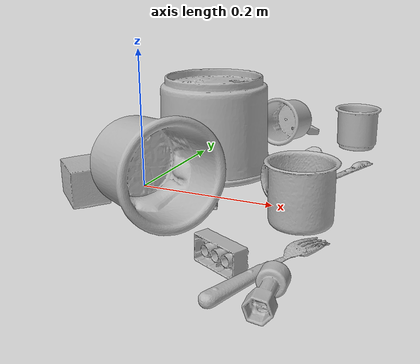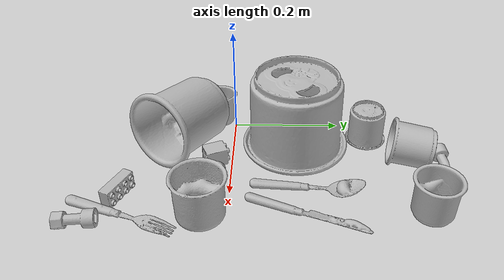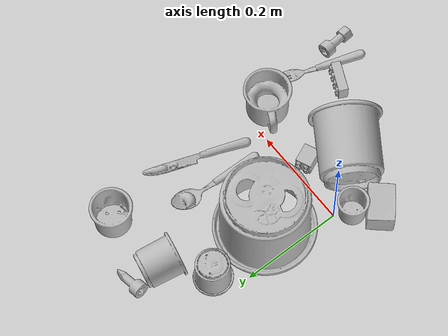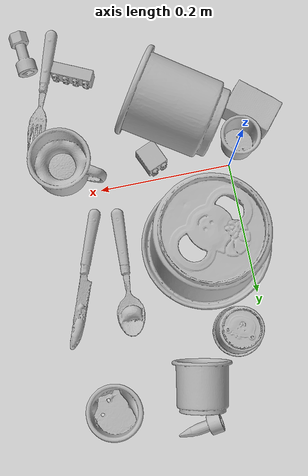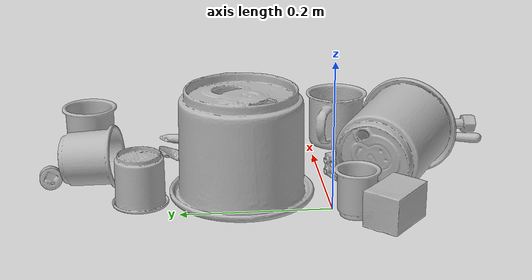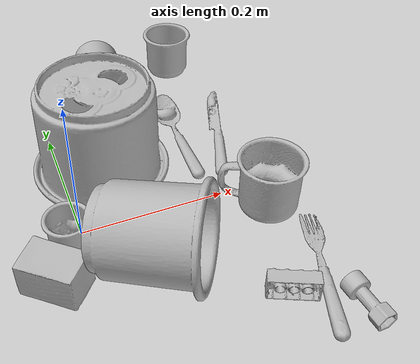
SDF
<sdf version="1.4">
  <world name="default">
    <light name="light1" type="point">
      <pose>0 0 1 0 0 0</pose>
      <diffuse>3 3 3 1</diffuse>
      <specular>3 3 3 1</specular>
    </light>
    <light name="light2" type="point">
      <pose>0 0.5 2 0 0 0</pose>
      <diffuse>1 1 1 1</diffuse>
      <specular>1 1 1 1</specular>
    </light>
    <light name="light3" type="point">
      <pose>0 0.5 2 0 0 0</pose>
      <diffuse>3 3 3 1</diffuse>
      <specular>3 3 3 1</specular>
    </light>
    <scene>
      <ambient>0.7 0.7 0.7</ambient>
    </scene>
    <model name="cup1">
      <link name="link_cup1">
        <collision name="default">
          <geometry>
            <mesh>
              <uri>model://e_cups/collision_meshes/collision.obj</uri>
              <scale>1.0 1.0 1.0</scale>
            </mesh>
          </geometry>
          <surface>
            <friction>
              <ode>
                <mu>0.5</mu>
                <mu2>0.5</mu2>
              </ode>
            </friction>
          <contact>
        <ode>
            <max_vel>0</max_vel>
            <min_depth>0.0001</min_depth>
            <kp>1e8</kp>
        </ode>
    </contact></surface>
        </collision>
        <visual name="default">
          <geometry>
            <mesh>
              <uri>model://e_cups/visual_meshes/visual.dae</uri>
              <scale>1.0 1.0 1.0</scale>
            </mesh>
          </geometry>
        </visual>
        <inertial>
          <mass>0.07679437845945358</mass>
          <pose>0.001135574304498732 0.002879783743992448 -0.0038829718250781298 0.6952411595659588 0.08767733322521654 -0.5235244631248706</pose>
          <inertia>
            <ixx>6.771342e-05</ixx>
            <iyy>7.077022e-05</iyy>
            <izz>6.4741864e-05</izz>
            <ixy>0</ixy>
            <ixz>0</ixz>
            <iyz>0</iyz>
          </inertia>
        </inertial>
      </link>
      <pose>0.04227800294756889 0.2513335943222046 0.03560691326856613 3.139696805803315 0.00825198334174455 -0.8551345230291284</pose>
    </model>
    <model name="silverware1">
      <link name="link_silverware1">
        <collision name="default">
          <geometry>
            <mesh>
              <uri>model://spoon/collision_meshes/collision.obj</uri>
              <scale>1.0 1.0 1.0</scale>
            </mesh>
          </geometry>
          <surface>
            <friction>
              <ode>
                <mu>0.5</mu>
                <mu2>0.5</mu2>
              </ode>
            </friction>
          <contact>
        <ode>
            <max_vel>0</max_vel>
            <min_depth>0.0001</min_depth>
            <kp>1e8</kp>
        </ode>
    </contact></surface>
        </collision>
        <visual name="default">
          <geometry>
            <mesh>
              <uri>model://spoon/visual_meshes/visual.dae</uri>
              <scale>1.0 1.0 1.0</scale>
            </mesh>
          </geometry>
        </visual>
        <inertial>
          <mass>0.015083584003150463</mass>
          <pose>-0.005526313092559576 -0.001603418029844761 -0.000727165665011853 0.035216710638299134 -0.03906584880684835 0.006150613179751253</pose>
          <inertia>
            <ixx>8.389734e-07</ixx>
            <iyy>5.739254e-05</iyy>
            <izz>5.7806283e-05</izz>
            <ixy>0</ixy>
            <ixz>0</ixz>
            <iyz>0</iyz>
          </inertia>
        </inertial>
      </link>
      <pose>0.1874355524778366 0.13244876265525818 0.008385262452065945 0.00672962799486395 0.026892989688329098 1.5080020785227575</pose>
    </model>
    <model name="cup2">
      <link name="link_cup2">
        <collision name="default">
          <geometry>
            <mesh>
              <uri>model://g_cups/collision_meshes/collision.obj</uri>
              <scale>1.0 1.0 1.0</scale>
            </mesh>
          </geometry>
          <surface>
            <friction>
              <ode>
                <mu>0.5</mu>
                <mu2>0.5</mu2>
              </ode>
            </friction>
          <contact>
        <ode>
            <max_vel>0</max_vel>
            <min_depth>0.0001</min_depth>
            <kp>1e8</kp>
        </ode>
    </contact></surface>
        </collision>
        <visual name="default">
          <geometry>
            <mesh>
              <uri>model://g_cups/visual_meshes/visual.dae</uri>
              <scale>1.0 1.0 1.0</scale>
            </mesh>
          </geometry>
        </visual>
        <inertial>
          <mass>0.04187431186437607</mass>
          <pose>-0.0007946277037262917 -4.2064348235726357e-05 -0.0021329382434487343 -0.21382305588888167 -0.31410659578681893 0.31120215507532384</pose>
          <inertia>
            <ixx>4.8876722e-05</ixx>
            <iyy>4.871046e-05</iyy>
            <izz>5.0627856e-05</izz>
            <ixy>0</ixy>
            <ixz>0</ixz>
            <iyz>0</iyz>
          </inertia>
        </inertial>
      </link>
      <pose>0.11376741528511047 0.31946271657943726 0.03995725139975548 1.4103382275447611 0.85613988061182 -0.31620398998892957</pose>
    </model>
    <model name="silverware2">
      <link name="link_silverware2">
        <collision name="default">
          <geometry>
            <mesh>
              <uri>model://fork/collision_meshes/collision.obj</uri>
              <scale>1.0 1.0 1.0</scale>
            </mesh>
          </geometry>
          <surface>
            <friction>
              <ode>
                <mu>0.5</mu>
                <mu2>0.5</mu2>
              </ode>
            </friction>
          <contact>
        <ode>
            <max_vel>0</max_vel>
            <min_depth>0.0001</min_depth>
            <kp>1e8</kp>
        </ode>
    </contact></surface>
        </collision>
        <visual name="default">
          <geometry>
            <mesh>
              <uri>model://fork/visual_meshes/visual.dae</uri>
              <scale>1.0 1.0 1.0</scale>
            </mesh>
          </geometry>
        </visual>
        <inertial>
          <mass>0.025364622473716736</mass>
          <pose>-0.029570050537586212 0.00046588227269239724 0.00032188615296036005 -0.013551666838441594 -0.010977837199147297 0.014453899745261501</pose>
          <inertia>
            <ixx>8.8917335e-07</ixx>
            <iyy>6.621973e-05</iyy>
            <izz>6.661743e-05</izz>
            <ixy>0</ixy>
            <ixz>0</ixz>
            <iyz>0</iyz>
          </inertia>
        </inertial>
      </link>
      <pose>0.25825434923171997 -0.17289170622825623 0.007446602918207645 -3.063499452701453 0.0028359583619422977 1.2395185513414435</pose>
    </model>
    <model name="cup3">
      <link name="link_cup3">
        <collision name="default">
          <geometry>
            <mesh>
              <uri>model://f_cups/collision_meshes/collision.obj</uri>
              <scale>1.0 1.0 1.0</scale>
            </mesh>
          </geometry>
          <surface>
            <friction>
              <ode>
                <mu>0.5</mu>
                <mu2>0.5</mu2>
              </ode>
            </friction>
          <contact>
        <ode>
            <max_vel>0</max_vel>
            <min_depth>0.0001</min_depth>
            <kp>1e8</kp>
        </ode>
    </contact></surface>
        </collision>
        <visual name="default">
          <geometry>
            <mesh>
              <uri>model://f_cups/visual_meshes/visual.dae</uri>
              <scale>1.0 1.0 1.0</scale>
            </mesh>
          </geometry>
        </visual>
        <inertial>
          <mass>0.08338716626167297</mass>
          <pose>-0.0031714679207652807 -0.0006240069633349776 -0.003655536798760295 0.7862348245142414 -0.2607950949044878 -0.18237232658982702</pose>
          <inertia>
            <ixx>7.838616e-05</ixx>
            <iyy>8.222797e-05</iyy>
            <izz>8.560161e-05</izz>
            <ixy>0</ixy>
            <ixz>0</ixz>
            <iyz>0</iyz>
          </inertia>
        </inertial>
      </link>
      <pose>0.24379070103168488 0.3301214873790741 0.0363059937953949 8.507834838276325e-09 -3.744504769263525e-08 0.35021376904782736</pose>
    </model>
    <model name="silverware3">
      <link name="link_silverware3">
        <collision name="default">
          <geometry>
            <mesh>
              <uri>model://knife/collision_meshes/collision.obj</uri>
              <scale>1.0 1.0 1.0</scale>
            </mesh>
          </geometry>
          <surface>
            <friction>
              <ode>
                <mu>0.5</mu>
                <mu2>0.5</mu2>
              </ode>
            </friction>
          <contact>
        <ode>
            <max_vel>0</max_vel>
            <min_depth>0.0001</min_depth>
            <kp>1e8</kp>
        </ode>
    </contact></surface>
        </collision>
        <visual name="default">
          <geometry>
            <mesh>
              <uri>model://knife/visual_meshes/visual.dae</uri>
              <scale>1.0 1.0 1.0</scale>
            </mesh>
          </geometry>
        </visual>
        <inertial>
          <mass>0.015509607270359993</mass>
          <pose>-0.02378525398671627 0.0015275129117071629 5.0620248657651246e-05 0.07305981518176793 0.01724841487141605 -0.0074098192082968535</pose>
          <inertia>
            <ixx>4.4022548e-07</ixx>
            <iyy>5.95854e-05</iyy>
            <izz>5.9727172e-05</izz>
            <ixy>0</ixy>
            <ixz>0</ixz>
            <iyz>0</iyz>
          </inertia>
        </inertial>
      </link>
      <pose>0.2501388490200043 0.12878620624542236 0.005810759030282497 2.8893637805176065 0.02591455569166326 1.2241071852129533</pose>
    </model>
    <model name="cup4">
      <link name="link_cup4">
        <collision name="default">
          <geometry>
            <mesh>
              <uri>model://d_cups/collision_meshes/collision.obj</uri>
              <scale>2.0 2.0 2.0</scale>
            </mesh>
          </geometry>
          <surface>
            <friction>
              <ode>
                <mu>0.5</mu>
                <mu2>0.5</mu2>
              </ode>
            </friction>
          <contact>
        <ode>
            <max_vel>0</max_vel>
            <min_depth>0.0001</min_depth>
            <kp>1e8</kp>
        </ode>
    </contact></surface>
        </collision>
        <visual name="default">
          <geometry>
            <mesh>
              <uri>model://d_cups/visual_meshes/visual.dae</uri>
              <scale>2.0 2.0 2.0</scale>
            </mesh>
          </geometry>
        </visual>
        <inertial>
          <mass>0.5481204390525818</mass>
          <pose>0.001613611588254571 0.0038234798703342676 -0.0045333015732467175 0.2401214667218237 -0.2470996070340832 0.5942599316130982</pose>
          <inertia>
            <ixx>0.001835623</ixx>
            <iyy>0.0018303102</iyy>
            <izz>0.0016615508</izz>
            <ixy>0</ixy>
            <ixz>0</ixz>
            <iyz>0</iyz>
          </inertia>
        </inertial>
      </link>
      <pose>0.0688454881310463 -0.09034667909145355 0.06495265662670135 -1.4732242668233255 0.45220619004095847 -2.1093841383978114</pose>
    </model>
    <model name="cup41">
      <link name="link_cup41">
        <collision name="default">
          <geometry>
            <mesh>
              <uri>model://b_cups/collision_meshes/collision.obj</uri>
              <scale>1.0 1.0 1.0</scale>
            </mesh>
          </geometry>
          <surface>
            <friction>
              <ode>
                <mu>0.5</mu>
                <mu2>0.5</mu2>
              </ode>
            </friction>
          <contact>
        <ode>
            <max_vel>0</max_vel>
            <min_depth>0.0001</min_depth>
            <kp>1e8</kp>
        </ode>
    </contact></surface>
        </collision>
        <visual name="default">
          <geometry>
            <mesh>
              <uri>model://b_cups/visual_meshes/visual.dae</uri>
              <scale>1.0 1.0 1.0</scale>
            </mesh>
          </geometry>
        </visual>
        <inertial>
          <mass>0.04462150111794472</mass>
          <pose>0.0005182005697861314 0.0018058601999655366 -0.0013381819007918239 0.11356336410280554 0.038725039404113405 -0.3456939711537357</pose>
          <inertia>
            <ixx>2.9207904e-05</ixx>
            <iyy>2.8653376e-05</iyy>
            <izz>2.45779e-05</izz>
            <ixy>0</ixy>
            <ixz>0</ixz>
            <iyz>0</iyz>
          </inertia>
        </inertial>
      </link>
      <pose>-0.018990445882081985 -0.028668968006968498 0.03199635446071625 -0.007617662404870044 -0.0038851162131824948 -0.5166766106881645</pose>
    </model>
    <model name="cup5">
      <link name="link_cup5">
        <collision name="default">
          <geometry>
            <mesh>
              <uri>model://i_cups/collision_meshes/collision.obj</uri>
              <scale>2.0 2.0 2.0</scale>
            </mesh>
          </geometry>
          <surface>
            <friction>
              <ode>
                <mu>0.5</mu>
                <mu2>0.5</mu2>
              </ode>
            </friction>
          <contact>
        <ode>
            <max_vel>0</max_vel>
            <min_depth>0.0001</min_depth>
            <kp>1e8</kp>
        </ode>
    </contact></surface>
        </collision>
        <visual name="default">
          <geometry>
            <mesh>
              <uri>model://i_cups/visual_meshes/visual.dae</uri>
              <scale>2.0 2.0 2.0</scale>
            </mesh>
          </geometry>
        </visual>
        <inertial>
          <mass>0.7183689475059509</mass>
          <pose>0.00022480347251985222 0.0003359461552463472 -0.0017158043337985873 -0.028983189607302198 -0.03987301698166741 -0.34590760218104494</pose>
          <inertia>
            <ixx>0.0039783698</ixx>
            <iyy>0.004013422</iyy>
            <izz>0.0044464725</izz>
            <ixy>0</ixy>
            <ixz>0</ixz>
            <iyz>0</iyz>
          </inertia>
        </inertial>
      </link>
      <pose>0.0607684925198555 0.1153339147567749 0.07586602866649628 3.141592523467098 5.058710771371979e-08 0.9286241088570001</pose>
    </model>
    <model name="cup51">
      <link name="link_cup51">
        <collision name="default">
          <geometry>
            <mesh>
              <uri>model://mug/collision_meshes/collision.obj</uri>
              <scale>1.0 1.0 1.0</scale>
            </mesh>
          </geometry>
          <surface>
            <friction>
              <ode>
                <mu>0.5</mu>
                <mu2>0.5</mu2>
              </ode>
            </friction>
          <contact>
        <ode>
            <max_vel>0</max_vel>
            <min_depth>0.0001</min_depth>
            <kp>1e8</kp>
        </ode>
    </contact></surface>
        </collision>
        <visual name="default">
          <geometry>
            <mesh>
              <uri>model://mug/visual_meshes/visual.dae</uri>
              <scale>1.0 1.0 1.0</scale>
            </mesh>
          </geometry>
        </visual>
        <inertial>
          <mass>0.1239403635263443</mass>
          <pose>0.009571672417223454 0.0008143244776874781 -0.01094733364880085 -0.12983126758676797 0.08737752450174939 0.055073145905888306</pose>
          <inertia>
            <ixx>0.0001231125</ixx>
            <iyy>0.00013750937</iyy>
            <izz>0.00015903146</izz>
            <ixy>0</ixy>
            <ixz>0</ixz>
            <iyz>0</iyz>
          </inertia>
        </inertial>
      </link>
      <pose>0.24078722298145294 -0.03716283291578293 0.04094886779785156 1.7923373498788454e-06 -5.024598272072871e-07 -0.5143310736582908</pose>
    </model>
    <model name="toy1">
      <link name="link_toy1">
        <collision name="default">
          <geometry>
            <mesh>
              <uri>model://e_toy_airplane/collision_meshes/collision.obj</uri>
              <scale>1.0 1.0 1.0</scale>
            </mesh>
          </geometry>
          <surface>
            <friction>
              <ode>
                <mu>0.5</mu>
                <mu2>0.5</mu2>
              </ode>
            </friction>
          <contact>
        <ode>
            <max_vel>0</max_vel>
            <min_depth>0.0001</min_depth>
            <kp>1e8</kp>
        </ode>
    </contact></surface>
        </collision>
        <visual name="default">
          <geometry>
            <mesh>
              <uri>model://e_toy_airplane/visual_meshes/visual.dae</uri>
              <scale>1.0 1.0 1.0</scale>
            </mesh>
          </geometry>
        </visual>
        <inertial>
          <mass>0.022831259295344353</mass>
          <pose>0.00011740475019905716 -2.2482799977296963e-05 -0.011187204159796238 0.005518483498250157 0.009228324176637706 0.15041338923558414</pose>
          <inertia>
            <ixx>6.9683606e-06</ixx>
            <iyy>6.897077e-06</iyy>
            <izz>2.0942666e-06</izz>
            <ixy>0</ixy>
            <ixz>0</ixz>
            <iyz>0</iyz>
          </inertia>
        </inertial>
      </link>
      <pose>0.12732981145381927 0.37854012846946716 0.012221217155456543 1.7424976413333852 -0.1400204078134879 1.6903810928895449</pose>
    </model>
    <model name="toy2">
      <link name="link_toy2">
        <collision name="default">
          <geometry>
            <mesh>
              <uri>model://c_toy_airplane/collision_meshes/collision.obj</uri>
              <scale>1.0 1.0 1.0</scale>
            </mesh>
          </geometry>
          <surface>
            <friction>
              <ode>
                <mu>0.5</mu>
                <mu2>0.5</mu2>
              </ode>
            </friction>
          <contact>
        <ode>
            <max_vel>0</max_vel>
            <min_depth>0.0001</min_depth>
            <kp>1e8</kp>
        </ode>
    </contact></surface>
        </collision>
        <visual name="default">
          <geometry>
            <mesh>
              <uri>model://c_toy_airplane/visual_meshes/visual.dae</uri>
              <scale>1.0 1.0 1.0</scale>
            </mesh>
          </geometry>
        </visual>
        <inertial>
          <mass>0.014964861795306206</mass>
          <pose>-0.00023024252732284367 -4.4292315237726143e-07 -0.006080531980842352 -0.006193085961310731 -0.016797608001683555 0.7655123908688324</pose>
          <inertia>
            <ixx>6.871557e-06</ixx>
            <iyy>6.852165e-06</iyy>
            <izz>1.6133057e-06</izz>
            <ixy>0</ixy>
            <ixz>0</ixz>
            <iyz>0</iyz>
          </inertia>
        </inertial>
      </link>
      <pose>0.2784366309642792 -0.23522885143756866 0.01469285786151886 1.5894956337663388 -0.09926524487735358 0.09656398643702929</pose>
    </model>
    <model name="toy3">
      <link name="link_toy3">
        <collision name="default">
          <geometry>
            <mesh>
              <uri>model://c_lego_duplo/collision_meshes/collision.obj</uri>
              <scale>1.0 1.0 1.0</scale>
            </mesh>
          </geometry>
          <surface>
            <friction>
              <ode>
                <mu>0.5</mu>
                <mu2>0.5</mu2>
              </ode>
            </friction>
          <contact>
        <ode>
            <max_vel>0</max_vel>
            <min_depth>0.0001</min_depth>
            <kp>1e8</kp>
        </ode>
    </contact></surface>
        </collision>
        <visual name="default">
          <geometry>
            <mesh>
              <uri>model://c_lego_duplo/visual_meshes/visual.dae</uri>
              <scale>1.0 1.0 1.0</scale>
            </mesh>
          </geometry>
        </visual>
        <inertial>
          <mass>0.043811071664094925</mass>
          <pose>0.00031645968556404114 0.00019464633078314364 0.0010453150607645512 -0.011520790971684333 0.005900079198968262 0.031100329952374963</pose>
          <inertia>
            <ixx>1.685932e-05</ixx>
            <iyy>5.3854724e-06</iyy>
            <izz>1.970185e-05</izz>
            <ixy>0</ixy>
            <ixz>0</ixz>
            <iyz>0</iyz>
          </inertia>
        </inertial>
      </link>
      <pose>0.2091544270515442 -0.18393705785274506 0.01625179685652256 2.078265250870316 -1.5447318875911993 2.198874785627477</pose>
    </model>
    <model name="toy4">
      <link name="link_toy4">
        <collision name="default">
          <geometry>
            <mesh>
              <uri>model://foam_brick/collision_meshes/collision.obj</uri>
              <scale>1.0 1.0 1.0</scale>
            </mesh>
          </geometry>
          <surface>
            <friction>
              <ode>
                <mu>0.5</mu>
                <mu2>0.5</mu2>
              </ode>
            </friction>
          <contact>
        <ode>
            <max_vel>0</max_vel>
            <min_depth>0.0001</min_depth>
            <kp>1e8</kp>
        </ode>
    </contact></surface>
        </collision>
        <visual name="default">
          <geometry>
            <mesh>
              <uri>model://foam_brick/visual_meshes/visual.dae</uri>
              <scale>1.0 1.0 1.0</scale>
            </mesh>
          </geometry>
        </visual>
        <inertial>
          <mass>0.278400182723999</mass>
          <pose>-0.0002522472059354186 0.00034584358218126 -0.0002532101352699101 -0.2940175595239471 0.01727444673583901 -0.0007449899720057078</pose>
          <inertia>
            <ixx>0.00012161039</ixx>
            <iyy>0.00019415727</iyy>
            <izz>0.00019662478</izz>
            <ixy>0</ixy>
            <ixz>0</ixz>
            <iyz>0</iyz>
          </inertia>
        </inertial>
      </link>
      <pose>-0.04830639436841011 -0.0724477618932724 0.025496844202280045 3.1325083880388207 0.006607233092387317 2.4239873411602266</pose>
    </model>
    <model name="toy5">
      <link name="link_toy5">
        <collision name="default">
          <geometry>
            <mesh>
              <uri>model://f_lego_duplo/collision_meshes/collision.obj</uri>
              <scale>1.0 1.0 1.0</scale>
            </mesh>
          </geometry>
          <surface>
            <friction>
              <ode>
                <mu>0.5</mu>
                <mu2>0.5</mu2>
              </ode>
            </friction>
          <contact>
        <ode>
            <max_vel>0</max_vel>
            <min_depth>0.0001</min_depth>
            <kp>1e8</kp>
        </ode>
    </contact></surface>
        </collision>
        <visual name="default">
          <geometry>
            <mesh>
              <uri>model://f_lego_duplo/visual_meshes/visual.dae</uri>
              <scale>1.0 1.0 1.0</scale>
            </mesh>
          </geometry>
        </visual>
        <inertial>
          <mass>0.033785246312618256</mass>
          <pose>2.369392132095527e-05 0.00013393175322562456 0.0018837875686585903 0.029838526741840128 -0.014425189077584645 -0.6756601169838921</pose>
          <inertia>
            <ixx>7.139008e-06</ixx>
            <iyy>7.202609e-06</iyy>
            <izz>6.1969613e-06</izz>
            <ixy>0</ixy>
            <ixz>0</ixz>
            <iyz>0</iyz>
          </inertia>
        </inertial>
      </link>
      <pose>0.11492675542831421 -0.029312079772353172 0.016207126900553703 1.5790572580643047 6.159573097127871e-05 -2.728316865631036</pose>
    </model>
  <physics type="ode">
      <max_contacts>50</max_contacts>
      <ode>
        <solver>
          <type>quick</type>
          <iters>75</iters>
        </solver>
        <constraints>
          <contact_max_correcting_vel>0</contact_max_correcting_vel>
          <contact_surface_layer>0</contact_surface_layer>
        </constraints>
      </ode>
    </physics></world>
</sdf>
